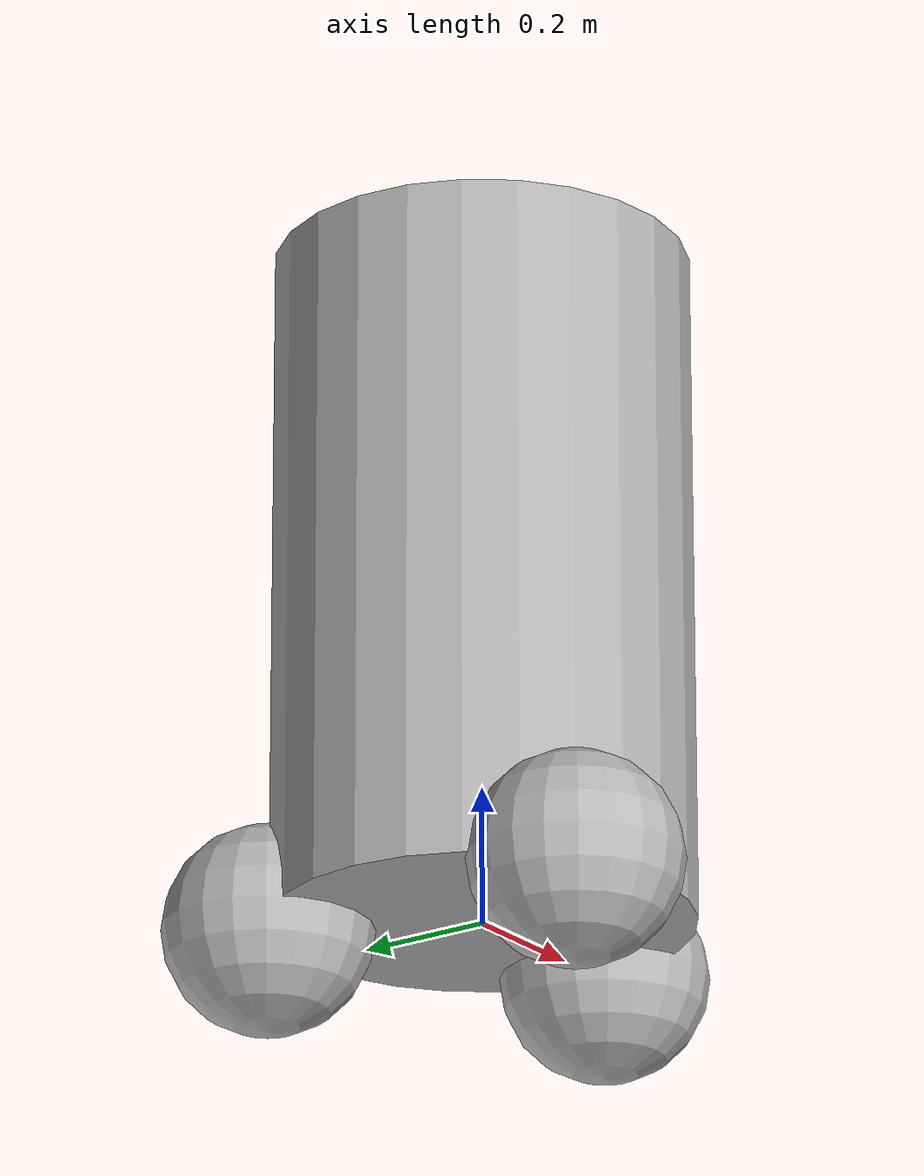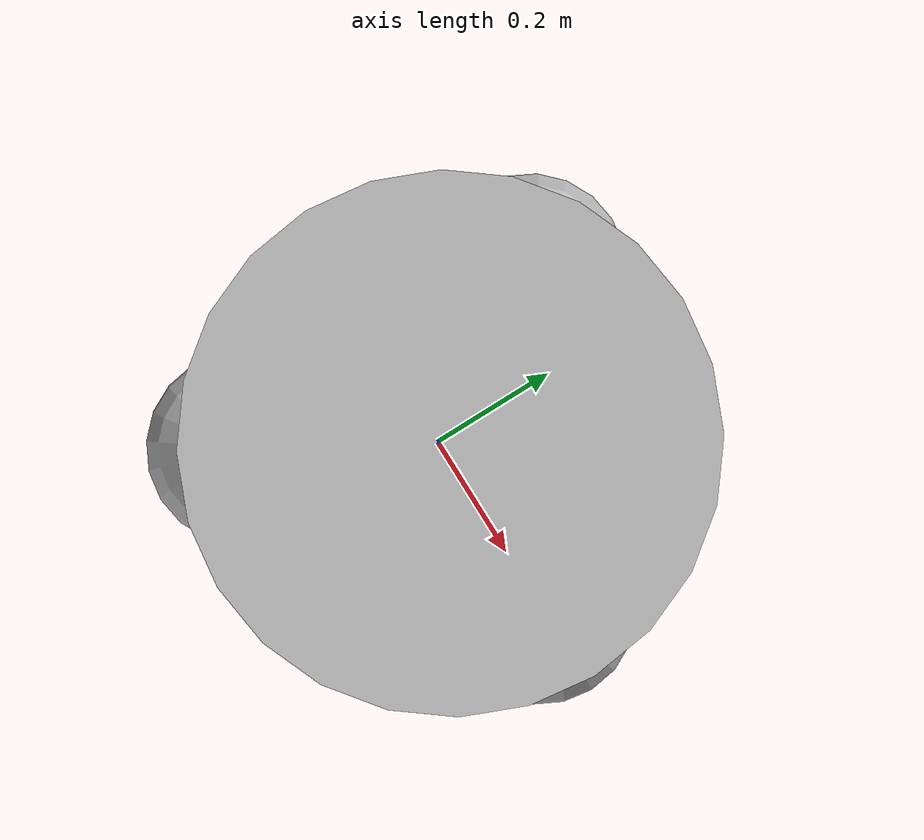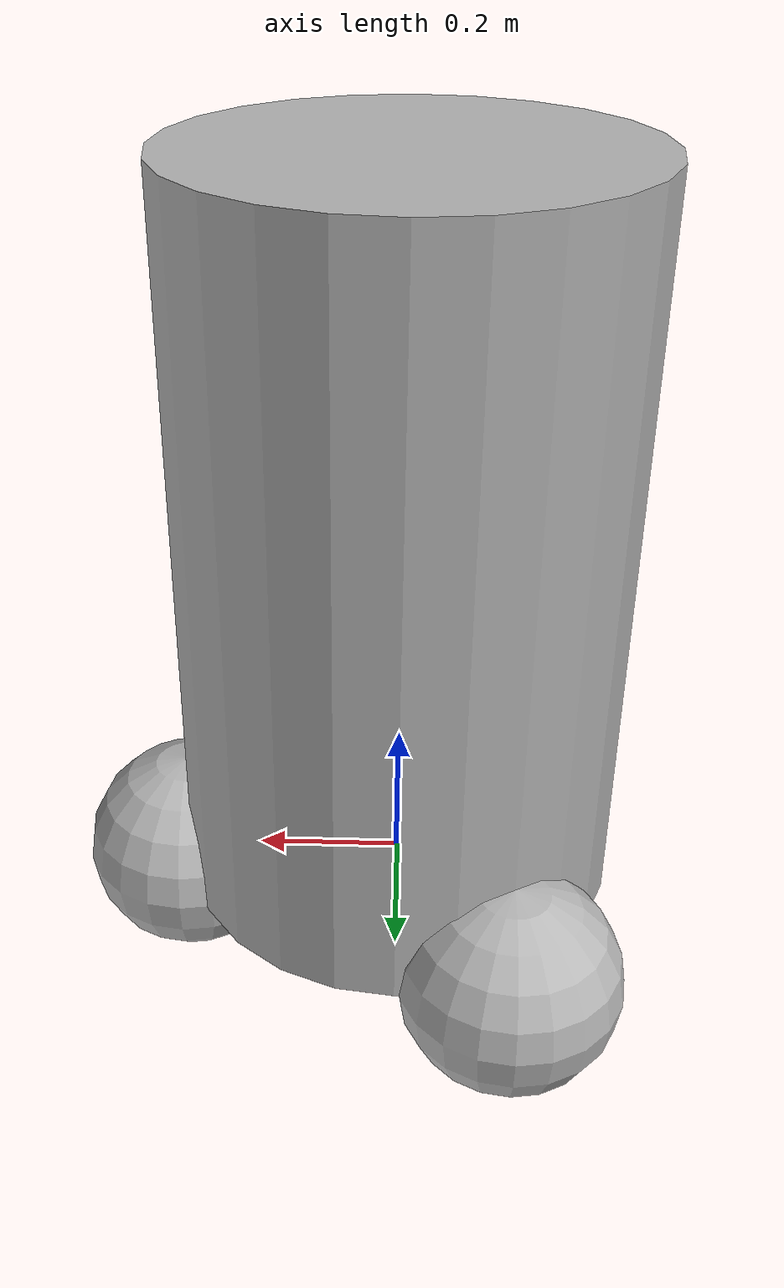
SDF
<sdf version="1.6">
  <model name="HumanoidRobot">
    <static>false</static>

    <!-- Body -->
    <link name="body">
      <pose>0 0 0.5 0 0 0</pose>
      <visual name="body_visual">
        <geometry>
          <cylinder>
            <radius>0.3</radius>
            <length>1.0</length>
          </cylinder>
        </geometry>
        <material>
          <ambient>0.7 0.7 0.7 1</ambient>
        </material>
      </visual>
      <collision name="body_collision">
        <geometry>
          <cylinder>
            <radius>0.3</radius>
            <length>1.0</length>
          </cylinder>
        </geometry>
      </collision>
    </link>

    <!-- Wheels (Balls) forming an equilateral triangle -->
    <!-- Front Ball -->
    <link name="front_ball">
      <pose>0.3 0 0 0 0 0</pose>
      <visual name="front_ball_visual">
        <geometry>
          <sphere>
            <radius>0.15</radius>
          </sphere>
        </geometry>
      </visual>
      <collision name="front_ball_collision">
        <geometry>
          <sphere>
            <radius>0.15</radius>
          </sphere>
        </geometry>
      </collision>
    </link>
    <joint name="front_ball_joint" type="fixed">
      <parent>body</parent>
      <child>front_ball</child>
      <pose>0.3 0 0 0 0 0</pose>
    </joint>

    <!-- Left Ball -->
    <link name="left_ball">
      <pose>-0.15 0.26 0 0 0 0</pose>
      <visual name="left_ball_visual">
        <geometry>
          <sphere>
            <radius>0.15</radius>
          </sphere>
        </geometry>
      </visual>
      <collision name="left_ball_collision">
        <geometry>
          <sphere>
            <radius>0.15</radius>
          </sphere>
        </geometry>
      </collision>
    </link>
    <joint name="left_ball_joint" type="fixed">
      <parent>body</parent>
      <child>left_ball</child>
      <pose>-0.15 0.26 0 0 0 0</pose>
    </joint>

    <!-- Right Ball -->
    <link name="right_ball">
      <pose>-0.15 -0.26 0 0 0 0</pose>
      <visual name="right_ball_visual">
        <geometry>
          <sphere>
            <radius>0.15</radius>
          </sphere>
        </geometry>
      </visual>
      <collision name="right_ball_collision">
        <geometry>
          <sphere>
            <radius>0.15</radius>
          </sphere>
        </geometry>
      </collision>
    </link>
    <joint name="right_ball_joint" type="fixed">
      <parent>body</parent>
      <child>right_ball</child>
      <pose>-0.15 -0.26 0 0 0 0</pose>
    </joint>

    <!-- Additional Links to Maintain Equilateral Triangle Structure -->
    <!-- Link between Front Ball and Left Ball -->
    <joint name="front_left_joint" type="fixed">
      <parent>front_ball</parent>
      <child>left_ball</child>
    </joint>

    <!-- Link between Front Ball and Right Ball -->
    <joint name="front_right_joint" type="fixed">
      <parent>front_ball</parent>
      <child>right_ball</child>
    </joint>

    <!-- Link between Left Ball and Right Ball -->
    <joint name="left_right_joint" type="fixed">
      <parent>left_ball</parent>
      <child>right_ball</child>
    </joint>

  </model>
</sdf>
